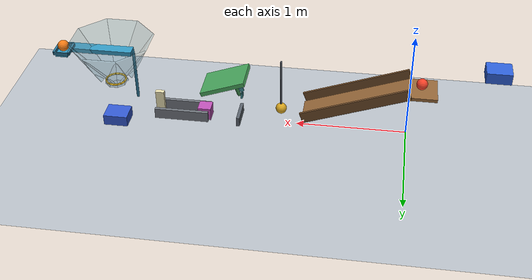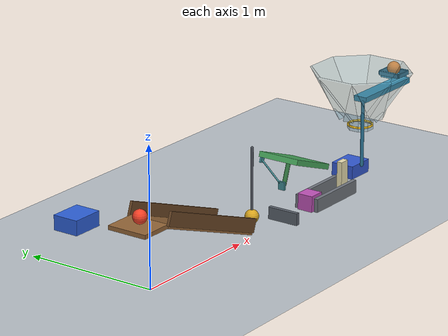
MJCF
<mujoco model="passive_chain_reaction">
  <compiler angle="degree" eulerseq="zyx" autolimits="true"/>
  <option timestep="0.002" gravity="0 0 -9.81" integrator="implicitfast" solver="Newton" iterations="80" tolerance="1e-9" cone="elliptic"/>
  <size njmax="2000" nconmax="500"/>
  <statistic center="1.3 0 0.5" extent="3.8"/>

  <visual>
    <headlight ambient="0.35 0.35 0.35" diffuse="0.7 0.7 0.7" specular="0.2 0.2 0.2"/>
    <rgba haze="0.85 0.9 1 1"/>
  </visual>

  <worldbody>
    <light name="main_light" pos="1 -3 5" dir="0 0 -1" directional="true"/>
    <camera name="overview" pos="4 -6 3.2" xyaxes="0.86 0.51 0 -0.22 0.37 0.90"/>

    <geom name="floor" type="plane" pos="0 0 0" size="8 5 0.1" friction="0.68 0.005 0.003" condim="6" solref="0.006 0.6901" solimp="0.95 0.99 0.001" rgba="0.72 0.75 0.78 1"/>

    <!-- At q=0.50, cart1's front face first reaches ball1. -->
    <body name="cart1" pos="-0.7298463104 0 0.713030215">
      <joint name="cart1_slide" type="slide" axis="0.9396926208 0 -0.3420201433" range="0 0.65" stiffness="18" springref="0.20" damping="0.20" solreflimit="0.004 1"/>
      <geom name="cart1_chassis" type="box" size="0.11 0.09 0.05" mass="0.50" friction="0.68 0.005 0.003" condim="6" solref="0.006 0.6901" solimp="0.95 0.99 0.001" rgba="0.18 0.38 0.85 1"/>
    </body>

    <body name="ball1" pos="-0.10 0 0.5420201433">
      <freejoint name="ball1_free"/>
      <geom name="ball1_sphere" type="sphere" size="0.05" mass="0.20" friction="0.68 0.005 0.003" condim="6" solref="0.006 0.6901" solimp="0.95 0.99 0.001" rgba="0.95 0.25 0.15 1"/>
    </body>

    <!-- Main inclined surface: length 1.00 m, width 0.30 m, slope 20 degrees.
         Its upper and lower surface endpoints are at z=0.4920201433 and z=0.15. -->
    <body name="ramp1" pos="0 0 0">
      <geom name="ramp1_slope" type="box" pos="0.4647160083 0 0.3069146823" quat="0.984807753 0 0.173648178 0" size="0.50 0.15 0.015" friction="0.68 0.005 0.003" condim="6" solref="0.006 0.6901" solimp="0.95 0.99 0.001" rgba="0.58 0.40 0.22 1"/>
      <geom name="ramp1_start_shelf" type="box" pos="-0.12 0 0.4770201433" size="0.12 0.15 0.015" friction="0.68 0.005 0.003" condim="6" solref="0.006 0.6901" solimp="0.95 0.99 0.001" rgba="0.58 0.40 0.22 1"/>
      <geom name="ramp1_left_rail" type="box" pos="0.4698463104 0.16 0.3610100717" quat="0.984807753 0 0.173648178 0" size="0.50 0.01 0.05" friction="0.68 0.005 0.003" condim="6" solref="0.006 0.6901" solimp="0.95 0.99 0.001" rgba="0.42 0.28 0.15 1"/>
      <geom name="ramp1_right_rail" type="box" pos="0.4698463104 -0.16 0.3610100717" quat="0.984807753 0 0.173648178 0" size="0.50 0.01 0.05" friction="0.68 0.005 0.003" condim="6" solref="0.006 0.6901" solimp="0.95 0.99 0.001" rgba="0.42 0.28 0.15 1"/>
    </body>

    <!-- Bob center initially lies 0.20 m beyond the ramp's low endpoint.
         Ball1's center crosses approximately 0.10 m before bob contact. -->
    <body name="pendulum1" pos="1.1396926208 0 0.66">
      <joint name="pendulum1_hinge" type="hinge" axis="0 -1 0" range="0 40" damping="0.04" solreflimit="0.004 1"/>
      <geom name="pendulum1_rod" type="capsule" fromto="0 0 0 0 0 -0.455" size="0.009" mass="0.04" friction="0.68 0.005 0.003" condim="6" solref="0.006 0.6901" solimp="0.95 0.99 0.001" rgba="0.30 0.32 0.36 1"/>
      <geom name="pendulum1_bob" type="sphere" pos="0 0 -0.50" size="0.05" mass="0.31" friction="0.68 0.005 0.003" condim="6" solref="0.006 0.6901" solimp="0.95 0.99 0.001" rgba="0.85 0.65 0.12 1"/>
    </body>

    <!-- Catch ball1 after the pendulum impact, before it can reach block1. -->
    <body name="ball1_catcher" pos="1.525 0 0.045">
      <geom name="ball1_catcher_wall" type="box" size="0.015 0.12 0.045" friction="0.68 0.005 0.003" condim="6" solref="0.006 0.6901" solimp="0.95 0.99 0.001" rgba="0.35 0.38 0.42 1"/>
    </body>

    <!-- Sliding support pin: pendulum contact begins just before 40 degrees.
         Its diagonal withdrawal clears the panel's lateral edge. -->
    <body name="door_support_latch" pos="1.50 0 0.277">
      <inertial pos="-0.005 0.06 0.065" mass="0.02" diaginertia="0.00008 0.00008 0.00004"/>
      <joint name="door_support_latch_slide" type="slide" axis="0.7071067812 0.7071067812 0" range="0 0.15" damping="0.20" solreflimit="0.004 1"/>
      <geom name="door_support_latch_target" type="box" size="0.008 0.025 0.03" mass="0" friction="0.68 0.005 0.003" condim="6" solref="0.006 0.6901" solimp="0.95 0.99 0.001" rgba="0.25 0.55 0.58 1"/>
      <geom name="door_support_latch_brace" type="capsule" fromto="0 0 0 -0.025 0.153 0.167" size="0.006" mass="0" friction="0.68 0.005 0.003" condim="6" solref="0.006 0.6901" solimp="0.95 0.99 0.001" rgba="0.25 0.55 0.58 1"/>
      <geom name="door_support_latch_pad" type="box" pos="-0.025 0.153 0.167" quat="0.984807753 0 0.173648178 0" size="0.020 0.006 0.020" mass="0" friction="0.68 0.005 0.003" condim="6" solref="0.006 0.6901" solimp="0.95 0.99 0.001" rgba="0.25 0.55 0.58 1"/>
    </body>

    <!-- The panel is 0.42 x 0.32 x 0.04 m and 0.45 kg.
         Its slender striker reaches the bob at the pendulum's 40-degree pose. -->
    <body name="door1" pos="1.847 0 0.35" quat="0.984807753 0 0.173648178 0">
      <inertial pos="-0.21 0 0" mass="0.45" diaginertia="0.003900 0.006675 0.010455"/>
      <joint name="door1_hinge" type="hinge" axis="0 -1 0" range="0 70" damping="0.04" stiffness="1.0" springref="70" solreflimit="0.004 1"/>
      <geom name="door1_panel" type="box" pos="-0.21 0 0" size="0.21 0.16 0.02" mass="0" friction="0.68 0.005 0.003" condim="6" solref="0.006 0.6901" solimp="0.95 0.99 0.001" rgba="0.28 0.65 0.36 1"/>
      <geom name="door1_striker" type="capsule" fromto="-0.275734 0 -0.01 -0.275734 0 -0.178044" size="0.016" mass="0" friction="0.68 0.005 0.003" condim="6" solref="0.006 0.6901" solimp="0.95 0.99 0.001" rgba="0.19 0.46 0.25 1"/>
    </body>

    <body name="block1" pos="1.85 0 0.06">
      <freejoint name="block1_free"/>
      <geom name="block1_cube" type="box" size="0.06 0.06 0.06" mass="0.35" friction="0.68 0.005 0.003" condim="6" solref="0.006 0.6901" solimp="0.95 0.99 0.001" rgba="0.75 0.32 0.72 1"/>
    </body>

    <body name="block1_guide" pos="0 0 0">
      <geom name="block1_guide_left" type="box" pos="2.06 0.08 0.05" size="0.25 0.015 0.05" friction="0.68 0.005 0.003" condim="6" solref="0.006 0.6901" solimp="0.95 0.99 0.001" rgba="0.44 0.46 0.49 1"/>
      <geom name="block1_guide_right" type="box" pos="2.06 -0.08 0.05" size="0.25 0.015 0.05" friction="0.68 0.005 0.003" condim="6" solref="0.006 0.6901" solimp="0.95 0.99 0.001" rgba="0.44 0.46 0.49 1"/>
    </body>

    <!-- Initial surface-to-surface block/domino separation is 0.32 m. -->
    <body name="domino1" pos="2.27 0 0.12">
      <freejoint name="domino1_free"/>
      <geom name="domino1_tile" type="box" size="0.04 0.02 0.12" mass="0.25" friction="0.68 0.005 0.003" condim="6" solref="0.006 0.6901" solimp="0.95 0.99 0.001" rgba="0.92 0.88 0.70 1"/>
    </body>

    <!-- Center-hinged 0.60 x 0.10 x 0.04 m beam.
         The striker is approximately 0.18 m beyond the domino's forward edge. -->
    <body name="lever1" pos="2.79 0 0.65">
      <joint name="lever1_hinge" type="hinge" axis="0 -1 0" range="0 45" damping="0.04" solreflimit="0.004 1"/>
      <geom name="lever1_beam" type="box" size="0.30 0.05 0.02" mass="0.42" friction="0.68 0.005 0.003" condim="6" solref="0.006 0.6901" solimp="0.95 0.99 0.001" rgba="0.20 0.60 0.76 1"/>
      <geom name="lever1_left_striker" type="capsule" fromto="-0.30 -0.025 -0.02 -0.30 -0.025 -0.50" size="0.013" mass="0.08" friction="0.68 0.005 0.003" condim="6" solref="0.006 0.6901" solimp="0.95 0.99 0.001" rgba="0.16 0.45 0.58 1"/>
      <geom name="lever1_ball_cup_floor" type="box" pos="0.30 0.09 0.01" size="0.055 0.08 0.01" mass="0" friction="0.68 0.005 0.003" condim="6" solref="0.006 0.6901" solimp="0.95 0.99 0.001" rgba="0.20 0.60 0.76 1"/>
      <geom name="lever1_ball_cup_back" type="box" pos="0.235 0.09 0.035" size="0.01 0.08 0.015" mass="0" friction="0.68 0.005 0.003" condim="6" solref="0.006 0.6901" solimp="0.95 0.99 0.001" rgba="0.16 0.45 0.58 1"/>
      <geom name="lever1_ball_cup_front" type="box" pos="0.365 0.09 0.035" size="0.01 0.08 0.015" mass="0" friction="0.68 0.005 0.003" condim="6" solref="0.006 0.6901" solimp="0.95 0.99 0.001" rgba="0.16 0.45 0.58 1"/>
      <geom name="lever1_ball_cup_left" type="box" pos="0.30 0.005 0.035" size="0.065 0.005 0.015" mass="0" friction="0.68 0.005 0.003" condim="6" solref="0.006 0.6901" solimp="0.95 0.99 0.001" rgba="0.16 0.45 0.58 1"/>
      <geom name="lever1_ball_cup_right" type="box" pos="0.30 0.175 0.035" size="0.065 0.005 0.015" mass="0" friction="0.68 0.005 0.003" condim="6" solref="0.006 0.6901" solimp="0.95 0.99 0.001" rgba="0.16 0.45 0.58 1"/>
    </body>

    <body name="ball2" pos="3.09 0.09 0.72">
      <freejoint name="ball2_free"/>
      <geom name="ball2_sphere" type="sphere" size="0.05" mass="0.20" contype="1" conaffinity="3" friction="0.68 0.005 0.003" condim="6" solref="0.006 0.6901" solimp="0.95 0.99 0.001" rgba="0.95 0.48 0.08 1"/>
    </body>

    <!-- Auxiliary octagonal funnel. Its collision bit is seen only by ball2. -->
    <body name="ball2_guide" pos="2.64 0.09 0.40">
      <geom name="ball2_guide_funnel_0" type="box" pos="0.21593 0 0.24" euler="0 -53.8505 0" size="0.222918 0.145 0.006" contype="2" conaffinity="0" friction="0.68 0.005 0.003" condim="6" solref="0.006 0.6901" solimp="0.95 0.99 0.001" rgba="0.45 0.65 0.72 0.35"/>
      <geom name="ball2_guide_funnel_1" type="box" pos="0.152686 0.152686 0.24" euler="45 -53.8505 0" size="0.222918 0.145 0.006" contype="2" conaffinity="0" friction="0.68 0.005 0.003" condim="6" solref="0.006 0.6901" solimp="0.95 0.99 0.001" rgba="0.45 0.65 0.72 0.35"/>
      <geom name="ball2_guide_funnel_2" type="box" pos="0 0.21593 0.24" euler="90 -53.8505 0" size="0.222918 0.145 0.006" contype="2" conaffinity="0" friction="0.68 0.005 0.003" condim="6" solref="0.006 0.6901" solimp="0.95 0.99 0.001" rgba="0.45 0.65 0.72 0.35"/>
      <geom name="ball2_guide_funnel_3" type="box" pos="-0.152686 0.152686 0.24" euler="135 -53.8505 0" size="0.222918 0.145 0.006" contype="2" conaffinity="0" friction="0.68 0.005 0.003" condim="6" solref="0.006 0.6901" solimp="0.95 0.99 0.001" rgba="0.45 0.65 0.72 0.35"/>
      <geom name="ball2_guide_funnel_4" type="box" pos="-0.21593 0 0.24" euler="180 -53.8505 0" size="0.222918 0.145 0.006" contype="2" conaffinity="0" friction="0.68 0.005 0.003" condim="6" solref="0.006 0.6901" solimp="0.95 0.99 0.001" rgba="0.45 0.65 0.72 0.35"/>
      <geom name="ball2_guide_funnel_5" type="box" pos="-0.152686 -0.152686 0.24" euler="225 -53.8505 0" size="0.222918 0.145 0.006" contype="2" conaffinity="0" friction="0.68 0.005 0.003" condim="6" solref="0.006 0.6901" solimp="0.95 0.99 0.001" rgba="0.45 0.65 0.72 0.35"/>
      <geom name="ball2_guide_funnel_6" type="box" pos="0 -0.21593 0.24" euler="270 -53.8505 0" size="0.222918 0.145 0.006" contype="2" conaffinity="0" friction="0.68 0.005 0.003" condim="6" solref="0.006 0.6901" solimp="0.95 0.99 0.001" rgba="0.45 0.65 0.72 0.35"/>
      <geom name="ball2_guide_funnel_7" type="box" pos="0.152686 -0.152686 0.24" euler="315 -53.8505 0" size="0.222918 0.145 0.006" contype="2" conaffinity="0" friction="0.68 0.005 0.003" condim="6" solref="0.006 0.6901" solimp="0.95 0.99 0.001" rgba="0.45 0.65 0.72 0.35"/>

      <geom name="ball2_guide_neck_0" type="box" pos="0.083 0 0.015" euler="0 0 0" size="0.006 0.035 0.045" contype="2" conaffinity="0" friction="0.68 0.005 0.003" condim="6" solref="0.006 0.6901" solimp="0.95 0.99 0.001" rgba="0.45 0.65 0.72 0.35"/>
      <geom name="ball2_guide_neck_1" type="box" pos="0.058690 0.058690 0.015" euler="45 0 0" size="0.006 0.035 0.045" contype="2" conaffinity="0" friction="0.68 0.005 0.003" condim="6" solref="0.006 0.6901" solimp="0.95 0.99 0.001" rgba="0.45 0.65 0.72 0.35"/>
      <geom name="ball2_guide_neck_2" type="box" pos="0 0.083 0.015" euler="90 0 0" size="0.006 0.035 0.045" contype="2" conaffinity="0" friction="0.68 0.005 0.003" condim="6" solref="0.006 0.6901" solimp="0.95 0.99 0.001" rgba="0.45 0.65 0.72 0.35"/>
      <geom name="ball2_guide_neck_3" type="box" pos="-0.058690 0.058690 0.015" euler="135 0 0" size="0.006 0.035 0.045" contype="2" conaffinity="0" friction="0.68 0.005 0.003" condim="6" solref="0.006 0.6901" solimp="0.95 0.99 0.001" rgba="0.45 0.65 0.72 0.35"/>
      <geom name="ball2_guide_neck_4" type="box" pos="-0.083 0 0.015" euler="180 0 0" size="0.006 0.035 0.045" contype="2" conaffinity="0" friction="0.68 0.005 0.003" condim="6" solref="0.006 0.6901" solimp="0.95 0.99 0.001" rgba="0.45 0.65 0.72 0.35"/>
      <geom name="ball2_guide_neck_5" type="box" pos="-0.058690 -0.058690 0.015" euler="225 0 0" size="0.006 0.035 0.045" contype="2" conaffinity="0" friction="0.68 0.005 0.003" condim="6" solref="0.006 0.6901" solimp="0.95 0.99 0.001" rgba="0.45 0.65 0.72 0.35"/>
      <geom name="ball2_guide_neck_6" type="box" pos="0 -0.083 0.015" euler="270 0 0" size="0.006 0.035 0.045" contype="2" conaffinity="0" friction="0.68 0.005 0.003" condim="6" solref="0.006 0.6901" solimp="0.95 0.99 0.001" rgba="0.45 0.65 0.72 0.35"/>
      <geom name="ball2_guide_neck_7" type="box" pos="0.058690 -0.058690 0.015" euler="315 0 0" size="0.006 0.035 0.045" contype="2" conaffinity="0" friction="0.68 0.005 0.003" condim="6" solref="0.006 0.6901" solimp="0.95 0.99 0.001" rgba="0.45 0.65 0.72 0.35"/>
    </body>

    <!-- Ring plane is 0.32 m below ball2's initial center.
         Capsule polygon has an inscribed clear diameter of 0.16 m. -->
    <body name="ring1" pos="2.64 0.09 0.40">
      <geom name="ring1_segment_00" type="capsule" fromto="0.089724 0 0 0.082895 0.034336 0" size="0.008" friction="0.68 0.005 0.003" condim="6" solref="0.006 0.6901" solimp="0.95 0.99 0.001" rgba="0.95 0.75 0.12 1"/>
      <geom name="ring1_segment_01" type="capsule" fromto="0.082895 0.034336 0 0.063445 0.063445 0" size="0.008" friction="0.68 0.005 0.003" condim="6" solref="0.006 0.6901" solimp="0.95 0.99 0.001" rgba="0.95 0.75 0.12 1"/>
      <geom name="ring1_segment_02" type="capsule" fromto="0.063445 0.063445 0 0.034336 0.082895 0" size="0.008" friction="0.68 0.005 0.003" condim="6" solref="0.006 0.6901" solimp="0.95 0.99 0.001" rgba="0.95 0.75 0.12 1"/>
      <geom name="ring1_segment_03" type="capsule" fromto="0.034336 0.082895 0 0 0.089724 0" size="0.008" friction="0.68 0.005 0.003" condim="6" solref="0.006 0.6901" solimp="0.95 0.99 0.001" rgba="0.95 0.75 0.12 1"/>
      <geom name="ring1_segment_04" type="capsule" fromto="0 0.089724 0 -0.034336 0.082895 0" size="0.008" friction="0.68 0.005 0.003" condim="6" solref="0.006 0.6901" solimp="0.95 0.99 0.001" rgba="0.95 0.75 0.12 1"/>
      <geom name="ring1_segment_05" type="capsule" fromto="-0.034336 0.082895 0 -0.063445 0.063445 0" size="0.008" friction="0.68 0.005 0.003" condim="6" solref="0.006 0.6901" solimp="0.95 0.99 0.001" rgba="0.95 0.75 0.12 1"/>
      <geom name="ring1_segment_06" type="capsule" fromto="-0.063445 0.063445 0 -0.082895 0.034336 0" size="0.008" friction="0.68 0.005 0.003" condim="6" solref="0.006 0.6901" solimp="0.95 0.99 0.001" rgba="0.95 0.75 0.12 1"/>
      <geom name="ring1_segment_07" type="capsule" fromto="-0.082895 0.034336 0 -0.089724 0 0" size="0.008" friction="0.68 0.005 0.003" condim="6" solref="0.006 0.6901" solimp="0.95 0.99 0.001" rgba="0.95 0.75 0.12 1"/>
      <geom name="ring1_segment_08" type="capsule" fromto="-0.089724 0 0 -0.082895 -0.034336 0" size="0.008" friction="0.68 0.005 0.003" condim="6" solref="0.006 0.6901" solimp="0.95 0.99 0.001" rgba="0.95 0.75 0.12 1"/>
      <geom name="ring1_segment_09" type="capsule" fromto="-0.082895 -0.034336 0 -0.063445 -0.063445 0" size="0.008" friction="0.68 0.005 0.003" condim="6" solref="0.006 0.6901" solimp="0.95 0.99 0.001" rgba="0.95 0.75 0.12 1"/>
      <geom name="ring1_segment_10" type="capsule" fromto="-0.063445 -0.063445 0 -0.034336 -0.082895 0" size="0.008" friction="0.68 0.005 0.003" condim="6" solref="0.006 0.6901" solimp="0.95 0.99 0.001" rgba="0.95 0.75 0.12 1"/>
      <geom name="ring1_segment_11" type="capsule" fromto="-0.034336 -0.082895 0 0 -0.089724 0" size="0.008" friction="0.68 0.005 0.003" condim="6" solref="0.006 0.6901" solimp="0.95 0.99 0.001" rgba="0.95 0.75 0.12 1"/>
      <geom name="ring1_segment_12" type="capsule" fromto="0 -0.089724 0 0.034336 -0.082895 0" size="0.008" friction="0.68 0.005 0.003" condim="6" solref="0.006 0.6901" solimp="0.95 0.99 0.001" rgba="0.95 0.75 0.12 1"/>
      <geom name="ring1_segment_13" type="capsule" fromto="0.034336 -0.082895 0 0.063445 -0.063445 0" size="0.008" friction="0.68 0.005 0.003" condim="6" solref="0.006 0.6901" solimp="0.95 0.99 0.001" rgba="0.95 0.75 0.12 1"/>
      <geom name="ring1_segment_14" type="capsule" fromto="0.063445 -0.063445 0 0.082895 -0.034336 0" size="0.008" friction="0.68 0.005 0.003" condim="6" solref="0.006 0.6901" solimp="0.95 0.99 0.001" rgba="0.95 0.75 0.12 1"/>
      <geom name="ring1_segment_15" type="capsule" fromto="0.082895 -0.034336 0 0.089724 0 0" size="0.008" friction="0.68 0.005 0.003" condim="6" solref="0.006 0.6901" solimp="0.95 0.99 0.001" rgba="0.95 0.75 0.12 1"/>
    </body>

    <!-- Cart top is at z=0.10. Ball center at first top contact is z=0.15,
         exactly 0.25 m below the ring plane. -->
    <body name="cart2" pos="2.64 0.17 0.05">
      <joint name="cart2_slide" type="slide" axis="1 0 0" range="-0.35 0.35" damping="0.20" solreflimit="0.004 1"/>
      <geom name="cart2_chassis" type="box" size="0.11 0.09 0.05" mass="0.50" friction="0.68 0.005 0.003" condim="6" solref="0.006 0.6901" solimp="0.95 0.99 0.001" rgba="0.20 0.35 0.82 1"/>
    </body>
  </worldbody>

  <keyframe>
    <key name="start" time="0" qvel="0 0 0 0 0 0 0 0 0 0 0 0 0 0 0 0 0 0 0 0 0 0 0 0 0 0 0 0 0 0"/>
  </keyframe>
</mujoco>
